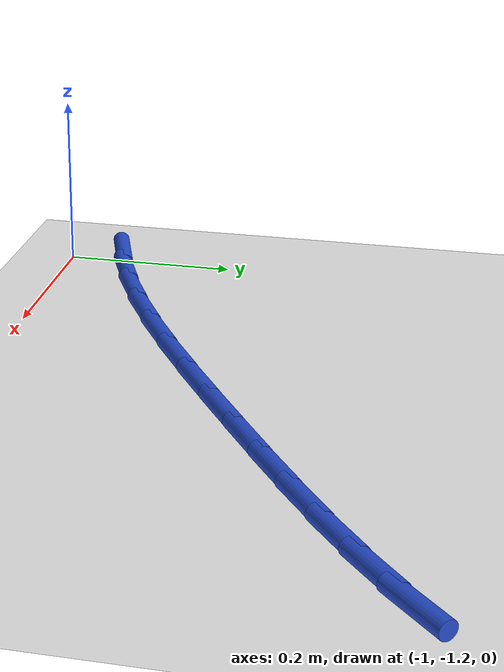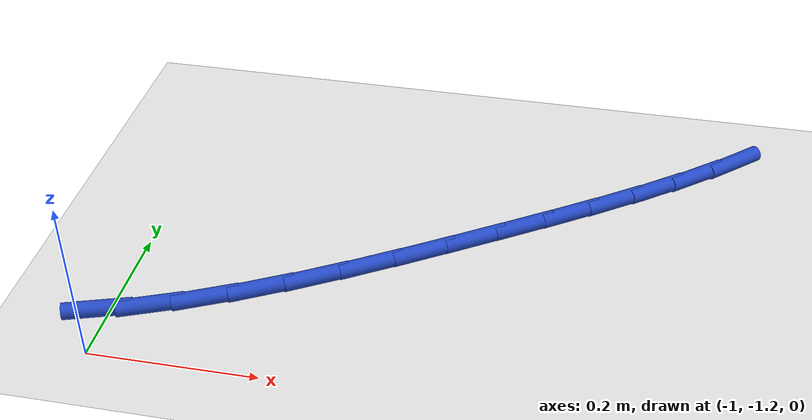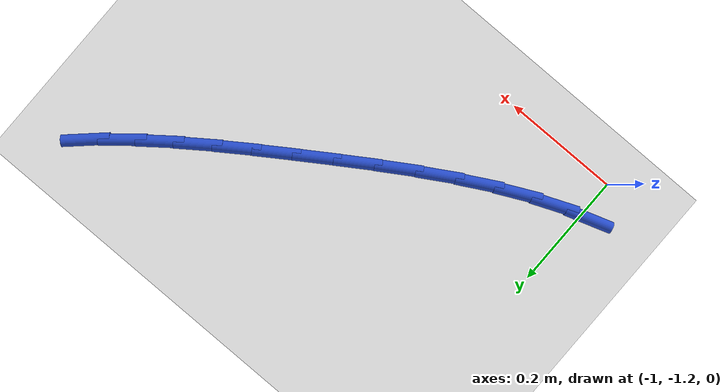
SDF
<sdf version="1.6">
 <world name="default">
  <model name="ground_plane">
   <static>1</static>
   <link name="link">
    <collision name="collision">
     <geometry><plane><normal>0 0 1</normal><size>100 100</size></plane></geometry>
     <surface><friction><ode><mu>100</mu><mu2>50</mu2></ode></friction></surface>
    </collision>
    <visual name="visual">
     <cast_shadows>0</cast_shadows>
     <geometry><plane><normal>0 0 1</normal><size>100 100</size></plane></geometry>
     <material>
      <script><uri>file://media/materials/scripts/gazebo.material</uri><name>Gazebo/WhiteGlow</name></script>
     </material>
    </visual>
   </link>
  </model>
  <model name="line">
   <link name="link_84">
    <pose>-1.0110082131847706 -1.1372543402277393 0.01 0 1.57 0.3214402430137696</pose>
    <collision name="collision">
     <geometry><cylinder><radius>0.01</radius><length>0.08</length></cylinder></geometry>
    </collision>
    <visual name="visual">
     <material>
      <script><name>Gazebo/Blue</name><uri>file://media/materials/scripts/gazebo.material</uri></script>
     </material>
     <geometry><cylinder><radius>0.01</radius><length>0.08</length></cylinder></geometry>
    </visual>
   </link>
   <link name="link_85">
    <pose>-0.9538128867689146 -1.1182089497844028 0.01 0 1.57 0.39789489743103523</pose>
    <collision name="collision">
     <geometry><cylinder><radius>0.01</radius><length>0.08</length></cylinder></geometry>
    </collision>
    <visual name="visual">
     <material>
      <script><name>Gazebo/Blue</name><uri>file://media/materials/scripts/gazebo.material</uri></script>
     </material>
     <geometry><cylinder><radius>0.01</radius><length>0.08</length></cylinder></geometry>
    </visual>
   </link>
   <link name="link_86">
    <pose>-0.8960863498508531 -1.0939456767999922 0.01 0 1.57 0.4579338483631447</pose>
    <collision name="collision">
     <geometry><cylinder><radius>0.01</radius><length>0.08</length></cylinder></geometry>
    </collision>
    <visual name="visual">
     <material>
      <script><name>Gazebo/Blue</name><uri>file://media/materials/scripts/gazebo.material</uri></script>
     </material>
     <geometry><cylinder><radius>0.01</radius><length>0.08</length></cylinder></geometry>
    </visual>
   </link>
   <link name="link_87">
    <pose>-0.8381121176617954 -1.0653714492329147 0.01 0 1.57 0.5043278216844073</pose>
    <collision name="collision">
     <geometry><cylinder><radius>0.01</radius><length>0.08</length></cylinder></geometry>
    </collision>
    <visual name="visual">
     <material>
      <script><name>Gazebo/Blue</name><uri>file://media/materials/scripts/gazebo.material</uri></script>
     </material>
     <geometry><cylinder><radius>0.01</radius><length>0.08</length></cylinder></geometry>
    </visual>
   </link>
   <link name="link_88">
    <pose>-0.7801737054329542 -1.0333931950415796 0.01 0 1.57 0.53919232205906</pose>
    <collision name="collision">
     <geometry><cylinder><radius>0.01</radius><length>0.08</length></cylinder></geometry>
    </collision>
    <visual name="visual">
     <material>
      <script><name>Gazebo/Blue</name><uri>file://media/materials/scripts/gazebo.material</uri></script>
     </material>
     <geometry><cylinder><radius>0.01</radius><length>0.08</length></cylinder></geometry>
    </visual>
   </link>
   <link name="link_89">
    <pose>-0.7225546283955386 -0.9989178421843931 0.01 0 1.57 0.5640089809242761</pose>
    <collision name="collision">
     <geometry><cylinder><radius>0.01</radius><length>0.08</length></cylinder></geometry>
    </collision>
    <visual name="visual">
     <material>
      <script><name>Gazebo/Blue</name><uri>file://media/materials/scripts/gazebo.material</uri></script>
     </material>
     <geometry><cylinder><radius>0.01</radius><length>0.08</length></cylinder></geometry>
    </visual>
   </link>
   <link name="link_90">
    <pose>-0.6655384017807617 -0.9628523186197641 0.01 0 1.57 0.5796789833416113</pose>
    <collision name="collision">
     <geometry><cylinder><radius>0.01</radius><length>0.08</length></cylinder></geometry>
    </collision>
    <visual name="visual">
     <material>
      <script><name>Gazebo/Blue</name><uri>file://media/materials/scripts/gazebo.material</uri></script>
     </material>
     <geometry><cylinder><radius>0.01</radius><length>0.08</length></cylinder></geometry>
    </visual>
   </link>
   <link name="link_91">
    <pose>-0.6094085408198328 -0.9261035523060994 0.01 0 1.57 0.5870078331037244</pose>
    <collision name="collision">
     <geometry><cylinder><radius>0.01</radius><length>0.08</length></cylinder></geometry>
    </collision>
    <visual name="visual">
     <material>
      <script><name>Gazebo/Blue</name><uri>file://media/materials/scripts/gazebo.material</uri></script>
     </material>
     <geometry><cylinder><radius>0.01</radius><length>0.08</length></cylinder></geometry>
    </visual>
   </link>
   <link name="link_92">
    <pose>-0.5544467072005248 -0.8895412517242027 0.01 0 1.57 0.594301347814308</pose>
    <collision name="collision">
     <geometry><cylinder><radius>0.01</radius><length>0.08</length></cylinder></geometry>
    </collision>
    <visual name="visual">
     <material>
      <script><name>Gazebo/Blue</name><uri>file://media/materials/scripts/gazebo.material</uri></script>
     </material>
     <geometry><cylinder><radius>0.01</radius><length>0.08</length></cylinder></geometry>
    </visual>
   </link>
   <link name="link_93">
    <pose>-0.5009006754190582 -0.8533546646004312 0.01 0 1.57 0.609151676947241</pose>
    <collision name="collision">
     <geometry><cylinder><radius>0.01</radius><length>0.08</length></cylinder></geometry>
    </collision>
    <visual name="visual">
     <material>
      <script><name>Gazebo/Blue</name><uri>file://media/materials/scripts/gazebo.material</uri></script>
     </material>
     <geometry><cylinder><radius>0.01</radius><length>0.08</length></cylinder></geometry>
    </visual>
   </link>
   <link name="link_94">
    <pose>-0.4489885784847951 -0.8171378324021057 0.01 0 1.57 0.6322509767779726</pose>
    <collision name="collision">
     <geometry><cylinder><radius>0.01</radius><length>0.08</length></cylinder></geometry>
    </collision>
    <visual name="visual">
     <material>
      <script><name>Gazebo/Blue</name><uri>file://media/materials/scripts/gazebo.material</uri></script>
     </material>
     <geometry><cylinder><radius>0.01</radius><length>0.08</length></cylinder></geometry>
    </visual>
   </link>
   <link name="link_95">
    <pose>-0.3989275497772764 -0.7804647238543236 0.01 0 1.57 0.6639920476995244</pose>
    <collision name="collision">
     <geometry><cylinder><radius>0.01</radius><length>0.08</length></cylinder></geometry>
    </collision>
    <visual name="visual">
     <material>
      <script><name>Gazebo/Blue</name><uri>file://media/materials/scripts/gazebo.material</uri></script>
     </material>
     <geometry><cylinder><radius>0.01</radius><length>0.08</length></cylinder></geometry>
    </visual>
   </link>
   <link name="link_96">
    <pose>-0.35093472267604525 -0.7429093076821834 0.01 0 1.57 0.7046513732123691</pose>
    <collision name="collision">
     <geometry><cylinder><radius>0.01</radius><length>0.08</length></cylinder></geometry>
    </collision>
    <visual name="visual">
     <material>
      <script><name>Gazebo/Blue</name><uri>file://media/materials/scripts/gazebo.material</uri></script>
     </material>
     <geometry><cylinder><radius>0.01</radius><length>0.08</length></cylinder></geometry>
    </visual>
   </link>
   <link name="link_97">
    <pose>-0.3052272305606434 -0.7040455526107833 0.01 0 1.57 0.7543007863833427</pose>
    <collision name="collision">
     <geometry><cylinder><radius>0.01</radius><length>0.08</length></cylinder></geometry>
    </collision>
    <visual name="visual">
     <material>
      <script><name>Gazebo/Blue</name><uri>file://media/materials/scripts/gazebo.material</uri></script>
     </material>
     <geometry><cylinder><radius>0.01</radius><length>0.08</length></cylinder></geometry>
    </visual>
   </link>
  </model>
 </world>
</sdf>
